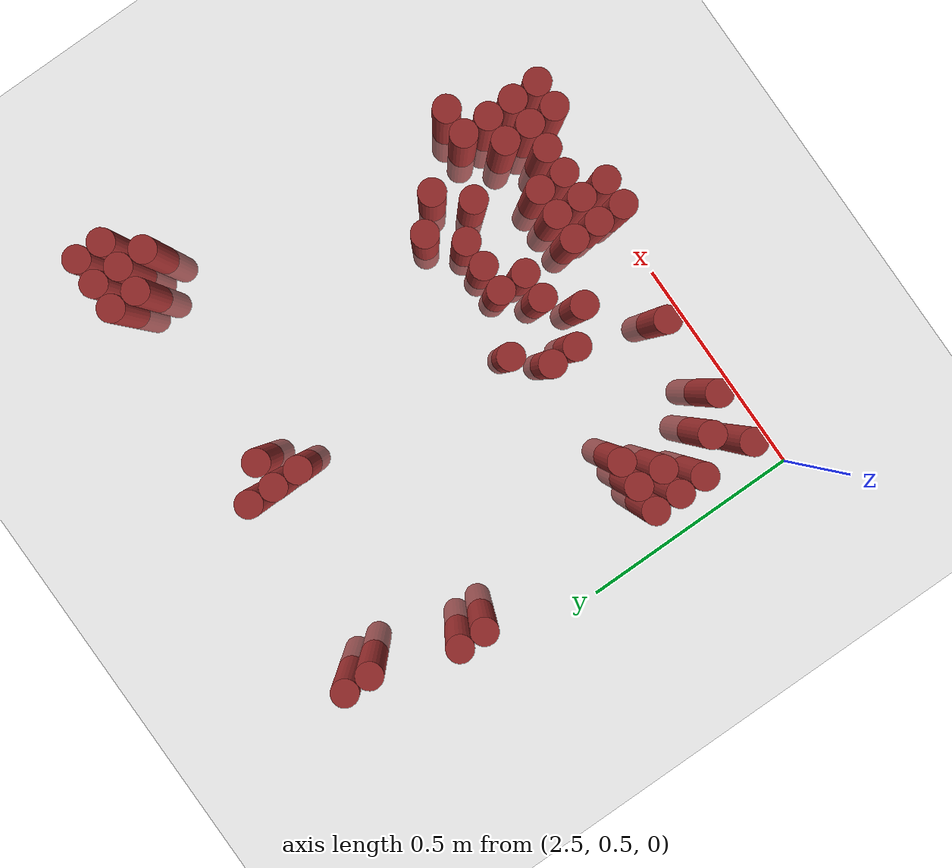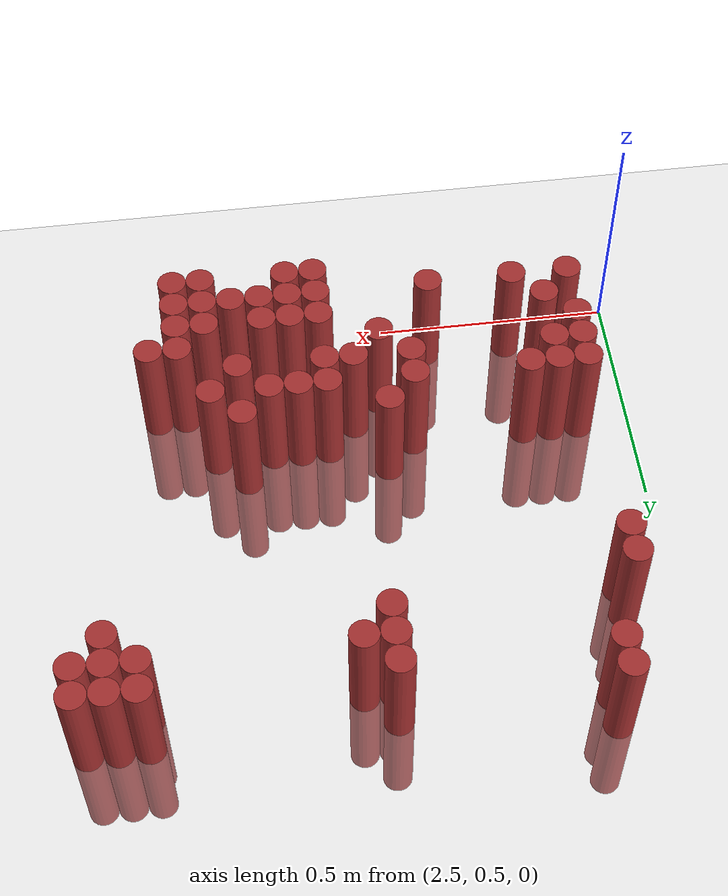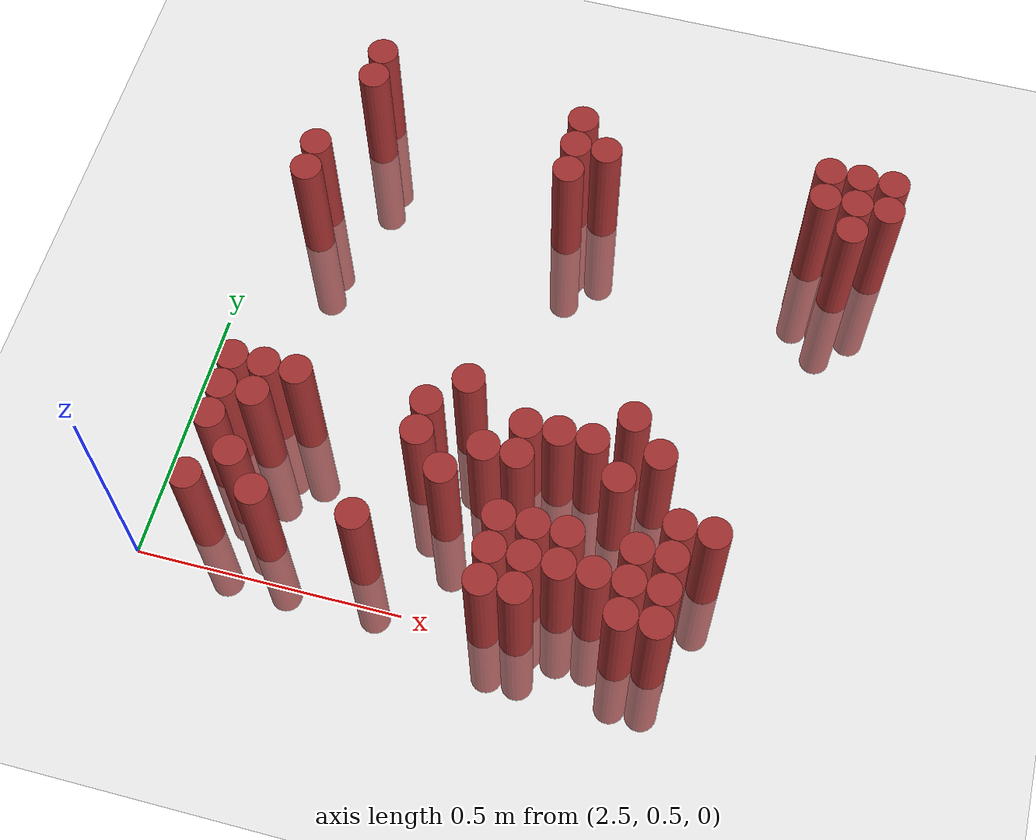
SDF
<sdf version="1.6">
 <world name="default">
  <model name="ground_plane">
   <static>1</static>
   <link name="link">
    <collision name="collision">
     <geometry><plane><normal>0 0 1</normal><size>100 100</size></plane></geometry>
     <surface><friction><ode><mu>100</mu><mu2>50</mu2></ode></friction></surface>
    </collision>
    <visual name="visual">
     <cast_shadows>0</cast_shadows>
     <geometry><plane><normal>0 0 1</normal><size>100 100</size></plane></geometry>
     <material>
      <script><uri>file://media/materials/scripts/gazebo.material</uri><name>Gazebo/Grey</name></script>
     </material>
    </visual>
   </link>
  </model>
  <model name="unit_cylinder_160">
   <static>1</static>
   <pose>2.670000 1.530000 0.000000 0.000000 0.000000 0.000000</pose>
   <link name="link">
    <inertial>
     <mass>1</mass>
     <inertia><ixx>0.145833</ixx><ixy>0</ixy><ixz>0</ixz><iyy>0.145833</iyy><iyz>0</iyz><izz>0.125</izz></inertia>
    </inertial>
    <collision name="collision">
     <geometry><cylinder><radius>0.030000</radius><length>0.5</length></cylinder></geometry>
    </collision>
    <visual name="visual">
     <geometry><cylinder><radius>0.030000</radius><length>0.5</length></cylinder></geometry>
     <material>
      <ambient>0.648000 0.192000 0.192000 1</ambient>
      <diffuse>0.648000 0.192000 0.192000 1</diffuse>
     </material>
     <material>
      <script><name>Gazebo/Grey</name><uri>file://media/materials/scripts/gazebo.material</uri></script>
     </material>
    </visual>
   </link>
  </model>
  <model name="unit_cylinder_169">
   <static>1</static>
   <pose>2.670000 1.470000 0.000000 0.000000 0.000000 0.000000</pose>
   <link name="link">
    <inertial>
     <mass>1</mass>
     <inertia><ixx>0.145833</ixx><ixy>0</ixy><ixz>0</ixz><iyy>0.145833</iyy><iyz>0</iyz><izz>0.125</izz></inertia>
    </inertial>
    <collision name="collision">
     <geometry><cylinder><radius>0.030000</radius><length>0.5</length></cylinder></geometry>
    </collision>
    <visual name="visual">
     <geometry><cylinder><radius>0.030000</radius><length>0.5</length></cylinder></geometry>
     <material>
      <ambient>0.648000 0.192000 0.192000 1</ambient>
      <diffuse>0.648000 0.192000 0.192000 1</diffuse>
     </material>
     <material>
      <script><name>Gazebo/Grey</name><uri>file://media/materials/scripts/gazebo.material</uri></script>
     </material>
    </visual>
   </link>
  </model>
  <model name="unit_cylinder_170">
   <static>1</static>
   <pose>3.090000 1.470000 0.000000 0.000000 0.000000 0.000000</pose>
   <link name="link">
    <inertial>
     <mass>1</mass>
     <inertia><ixx>0.145833</ixx><ixy>0</ixy><ixz>0</ixz><iyy>0.145833</iyy><iyz>0</iyz><izz>0.125</izz></inertia>
    </inertial>
    <collision name="collision">
     <geometry><cylinder><radius>0.030000</radius><length>0.5</length></cylinder></geometry>
    </collision>
    <visual name="visual">
     <geometry><cylinder><radius>0.030000</radius><length>0.5</length></cylinder></geometry>
     <material>
      <ambient>0.648000 0.192000 0.192000 1</ambient>
      <diffuse>0.648000 0.192000 0.192000 1</diffuse>
     </material>
     <material>
      <script><name>Gazebo/Grey</name><uri>file://media/materials/scripts/gazebo.material</uri></script>
     </material>
    </visual>
   </link>
  </model>
  <model name="unit_cylinder_171">
   <static>1</static>
   <pose>3.570000 1.470000 0.000000 0.000000 0.000000 0.000000</pose>
   <link name="link">
    <inertial>
     <mass>1</mass>
     <inertia><ixx>0.145833</ixx><ixy>0</ixy><ixz>0</ixz><iyy>0.145833</iyy><iyz>0</iyz><izz>0.125</izz></inertia>
    </inertial>
    <collision name="collision">
     <geometry><cylinder><radius>0.030000</radius><length>0.5</length></cylinder></geometry>
    </collision>
    <visual name="visual">
     <geometry><cylinder><radius>0.030000</radius><length>0.5</length></cylinder></geometry>
     <material>
      <ambient>0.648000 0.192000 0.192000 1</ambient>
      <diffuse>0.648000 0.192000 0.192000 1</diffuse>
     </material>
     <material>
      <script><name>Gazebo/Grey</name><uri>file://media/materials/scripts/gazebo.material</uri></script>
     </material>
    </visual>
   </link>
  </model>
  <model name="unit_cylinder_172">
   <static>1</static>
   <pose>3.630000 1.470000 0.000000 0.000000 0.000000 0.000000</pose>
   <link name="link">
    <inertial>
     <mass>1</mass>
     <inertia><ixx>0.145833</ixx><ixy>0</ixy><ixz>0</ixz><iyy>0.145833</iyy><iyz>0</iyz><izz>0.125</izz></inertia>
    </inertial>
    <collision name="collision">
     <geometry><cylinder><radius>0.030000</radius><length>0.5</length></cylinder></geometry>
    </collision>
    <visual name="visual">
     <geometry><cylinder><radius>0.030000</radius><length>0.5</length></cylinder></geometry>
     <material>
      <ambient>0.648000 0.192000 0.192000 1</ambient>
      <diffuse>0.648000 0.192000 0.192000 1</diffuse>
     </material>
     <material>
      <script><name>Gazebo/Grey</name><uri>file://media/materials/scripts/gazebo.material</uri></script>
     </material>
    </visual>
   </link>
  </model>
  <model name="unit_cylinder_173">
   <static>1</static>
   <pose>3.690000 1.470000 0.000000 0.000000 0.000000 0.000000</pose>
   <link name="link">
    <inertial>
     <mass>1</mass>
     <inertia><ixx>0.145833</ixx><ixy>0</ixy><ixz>0</ixz><iyy>0.145833</iyy><iyz>0</iyz><izz>0.125</izz></inertia>
    </inertial>
    <collision name="collision">
     <geometry><cylinder><radius>0.030000</radius><length>0.5</length></cylinder></geometry>
    </collision>
    <visual name="visual">
     <geometry><cylinder><radius>0.030000</radius><length>0.5</length></cylinder></geometry>
     <material>
      <ambient>0.648000 0.192000 0.192000 1</ambient>
      <diffuse>0.648000 0.192000 0.192000 1</diffuse>
     </material>
     <material>
      <script><name>Gazebo/Grey</name><uri>file://media/materials/scripts/gazebo.material</uri></script>
     </material>
    </visual>
   </link>
  </model>
  <model name="unit_cylinder_176">
   <static>1</static>
   <pose>3.090000 1.410000 0.000000 0.000000 0.000000 0.000000</pose>
   <link name="link">
    <inertial>
     <mass>1</mass>
     <inertia><ixx>0.145833</ixx><ixy>0</ixy><ixz>0</ixz><iyy>0.145833</iyy><iyz>0</iyz><izz>0.125</izz></inertia>
    </inertial>
    <collision name="collision">
     <geometry><cylinder><radius>0.030000</radius><length>0.5</length></cylinder></geometry>
    </collision>
    <visual name="visual">
     <geometry><cylinder><radius>0.030000</radius><length>0.5</length></cylinder></geometry>
     <material>
      <ambient>0.648000 0.192000 0.192000 1</ambient>
      <diffuse>0.648000 0.192000 0.192000 1</diffuse>
     </material>
     <material>
      <script><name>Gazebo/Grey</name><uri>file://media/materials/scripts/gazebo.material</uri></script>
     </material>
    </visual>
   </link>
  </model>
  <model name="unit_cylinder_177">
   <static>1</static>
   <pose>3.150000 1.410000 0.000000 0.000000 0.000000 0.000000</pose>
   <link name="link">
    <inertial>
     <mass>1</mass>
     <inertia><ixx>0.145833</ixx><ixy>0</ixy><ixz>0</ixz><iyy>0.145833</iyy><iyz>0</iyz><izz>0.125</izz></inertia>
    </inertial>
    <collision name="collision">
     <geometry><cylinder><radius>0.030000</radius><length>0.5</length></cylinder></geometry>
    </collision>
    <visual name="visual">
     <geometry><cylinder><radius>0.030000</radius><length>0.5</length></cylinder></geometry>
     <material>
      <ambient>0.648000 0.192000 0.192000 1</ambient>
      <diffuse>0.648000 0.192000 0.192000 1</diffuse>
     </material>
     <material>
      <script><name>Gazebo/Grey</name><uri>file://media/materials/scripts/gazebo.material</uri></script>
     </material>
    </visual>
   </link>
  </model>
  <model name="unit_cylinder_178">
   <static>1</static>
   <pose>3.570000 1.410000 0.000000 0.000000 0.000000 0.000000</pose>
   <link name="link">
    <inertial>
     <mass>1</mass>
     <inertia><ixx>0.145833</ixx><ixy>0</ixy><ixz>0</ixz><iyy>0.145833</iyy><iyz>0</iyz><izz>0.125</izz></inertia>
    </inertial>
    <collision name="collision">
     <geometry><cylinder><radius>0.030000</radius><length>0.5</length></cylinder></geometry>
    </collision>
    <visual name="visual">
     <geometry><cylinder><radius>0.030000</radius><length>0.5</length></cylinder></geometry>
     <material>
      <ambient>0.648000 0.192000 0.192000 1</ambient>
      <diffuse>0.648000 0.192000 0.192000 1</diffuse>
     </material>
     <material>
      <script><name>Gazebo/Grey</name><uri>file://media/materials/scripts/gazebo.material</uri></script>
     </material>
    </visual>
   </link>
  </model>
  <model name="unit_cylinder_179">
   <static>1</static>
   <pose>3.630000 1.410000 0.000000 0.000000 0.000000 0.000000</pose>
   <link name="link">
    <inertial>
     <mass>1</mass>
     <inertia><ixx>0.145833</ixx><ixy>0</ixy><ixz>0</ixz><iyy>0.145833</iyy><iyz>0</iyz><izz>0.125</izz></inertia>
    </inertial>
    <collision name="collision">
     <geometry><cylinder><radius>0.030000</radius><length>0.5</length></cylinder></geometry>
    </collision>
    <visual name="visual">
     <geometry><cylinder><radius>0.030000</radius><length>0.5</length></cylinder></geometry>
     <material>
      <ambient>0.648000 0.192000 0.192000 1</ambient>
      <diffuse>0.648000 0.192000 0.192000 1</diffuse>
     </material>
     <material>
      <script><name>Gazebo/Grey</name><uri>file://media/materials/scripts/gazebo.material</uri></script>
     </material>
    </visual>
   </link>
  </model>
  <model name="unit_cylinder_180">
   <static>1</static>
   <pose>3.690000 1.410000 0.000000 0.000000 0.000000 0.000000</pose>
   <link name="link">
    <inertial>
     <mass>1</mass>
     <inertia><ixx>0.145833</ixx><ixy>0</ixy><ixz>0</ixz><iyy>0.145833</iyy><iyz>0</iyz><izz>0.125</izz></inertia>
    </inertial>
    <collision name="collision">
     <geometry><cylinder><radius>0.030000</radius><length>0.5</length></cylinder></geometry>
    </collision>
    <visual name="visual">
     <geometry><cylinder><radius>0.030000</radius><length>0.5</length></cylinder></geometry>
     <material>
      <ambient>0.648000 0.192000 0.192000 1</ambient>
      <diffuse>0.648000 0.192000 0.192000 1</diffuse>
     </material>
     <material>
      <script><name>Gazebo/Grey</name><uri>file://media/materials/scripts/gazebo.material</uri></script>
     </material>
    </visual>
   </link>
  </model>
  <model name="unit_cylinder_182">
   <static>1</static>
   <pose>3.090000 1.350000 0.000000 0.000000 0.000000 0.000000</pose>
   <link name="link">
    <inertial>
     <mass>1</mass>
     <inertia><ixx>0.145833</ixx><ixy>0</ixy><ixz>0</ixz><iyy>0.145833</iyy><iyz>0</iyz><izz>0.125</izz></inertia>
    </inertial>
    <collision name="collision">
     <geometry><cylinder><radius>0.030000</radius><length>0.5</length></cylinder></geometry>
    </collision>
    <visual name="visual">
     <geometry><cylinder><radius>0.030000</radius><length>0.5</length></cylinder></geometry>
     <material>
      <ambient>0.648000 0.192000 0.192000 1</ambient>
      <diffuse>0.648000 0.192000 0.192000 1</diffuse>
     </material>
     <material>
      <script><name>Gazebo/Grey</name><uri>file://media/materials/scripts/gazebo.material</uri></script>
     </material>
    </visual>
   </link>
  </model>
  <model name="unit_cylinder_183">
   <static>1</static>
   <pose>3.630000 1.350000 0.000000 0.000000 0.000000 0.000000</pose>
   <link name="link">
    <inertial>
     <mass>1</mass>
     <inertia><ixx>0.145833</ixx><ixy>0</ixy><ixz>0</ixz><iyy>0.145833</iyy><iyz>0</iyz><izz>0.125</izz></inertia>
    </inertial>
    <collision name="collision">
     <geometry><cylinder><radius>0.030000</radius><length>0.5</length></cylinder></geometry>
    </collision>
    <visual name="visual">
     <geometry><cylinder><radius>0.030000</radius><length>0.5</length></cylinder></geometry>
     <material>
      <ambient>0.648000 0.192000 0.192000 1</ambient>
      <diffuse>0.648000 0.192000 0.192000 1</diffuse>
     </material>
     <material>
      <script><name>Gazebo/Grey</name><uri>file://media/materials/scripts/gazebo.material</uri></script>
     </material>
    </visual>
   </link>
  </model>
  <model name="unit_cylinder_184">
   <static>1</static>
   <pose>2.610000 1.290000 0.000000 0.000000 0.000000 0.000000</pose>
   <link name="link">
    <inertial>
     <mass>1</mass>
     <inertia><ixx>0.145833</ixx><ixy>0</ixy><ixz>0</ixz><iyy>0.145833</iyy><iyz>0</iyz><izz>0.125</izz></inertia>
    </inertial>
    <collision name="collision">
     <geometry><cylinder><radius>0.030000</radius><length>0.5</length></cylinder></geometry>
    </collision>
    <visual name="visual">
     <geometry><cylinder><radius>0.030000</radius><length>0.5</length></cylinder></geometry>
     <material>
      <ambient>0.648000 0.192000 0.192000 1</ambient>
      <diffuse>0.648000 0.192000 0.192000 1</diffuse>
     </material>
     <material>
      <script><name>Gazebo/Grey</name><uri>file://media/materials/scripts/gazebo.material</uri></script>
     </material>
    </visual>
   </link>
  </model>
  <model name="unit_cylinder_186">
   <static>1</static>
   <pose>2.610000 1.230000 0.000000 0.000000 0.000000 0.000000</pose>
   <link name="link">
    <inertial>
     <mass>1</mass>
     <inertia><ixx>0.145833</ixx><ixy>0</ixy><ixz>0</ixz><iyy>0.145833</iyy><iyz>0</iyz><izz>0.125</izz></inertia>
    </inertial>
    <collision name="collision">
     <geometry><cylinder><radius>0.030000</radius><length>0.5</length></cylinder></geometry>
    </collision>
    <visual name="visual">
     <geometry><cylinder><radius>0.030000</radius><length>0.5</length></cylinder></geometry>
     <material>
      <ambient>0.648000 0.192000 0.192000 1</ambient>
      <diffuse>0.648000 0.192000 0.192000 1</diffuse>
     </material>
     <material>
      <script><name>Gazebo/Grey</name><uri>file://media/materials/scripts/gazebo.material</uri></script>
     </material>
    </visual>
   </link>
  </model>
  <model name="unit_cylinder_189">
   <static>1</static>
   <pose>3.030000 0.870000 0.000000 0.000000 0.000000 0.000000</pose>
   <link name="link">
    <inertial>
     <mass>1</mass>
     <inertia><ixx>0.145833</ixx><ixy>0</ixy><ixz>0</ixz><iyy>0.145833</iyy><iyz>0</iyz><izz>0.125</izz></inertia>
    </inertial>
    <collision name="collision">
     <geometry><cylinder><radius>0.030000</radius><length>0.5</length></cylinder></geometry>
    </collision>
    <visual name="visual">
     <geometry><cylinder><radius>0.030000</radius><length>0.5</length></cylinder></geometry>
     <material>
      <ambient>0.648000 0.192000 0.192000 1</ambient>
      <diffuse>0.648000 0.192000 0.192000 1</diffuse>
     </material>
     <material>
      <script><name>Gazebo/Grey</name><uri>file://media/materials/scripts/gazebo.material</uri></script>
     </material>
    </visual>
   </link>
  </model>
  <model name="unit_cylinder_190">
   <static>1</static>
   <pose>3.330000 0.870000 0.000000 0.000000 0.000000 0.000000</pose>
   <link name="link">
    <inertial>
     <mass>1</mass>
     <inertia><ixx>0.145833</ixx><ixy>0</ixy><ixz>0</ixz><iyy>0.145833</iyy><iyz>0</iyz><izz>0.125</izz></inertia>
    </inertial>
    <collision name="collision">
     <geometry><cylinder><radius>0.030000</radius><length>0.5</length></cylinder></geometry>
    </collision>
    <visual name="visual">
     <geometry><cylinder><radius>0.030000</radius><length>0.5</length></cylinder></geometry>
     <material>
      <ambient>0.648000 0.192000 0.192000 1</ambient>
      <diffuse>0.648000 0.192000 0.192000 1</diffuse>
     </material>
     <material>
      <script><name>Gazebo/Grey</name><uri>file://media/materials/scripts/gazebo.material</uri></script>
     </material>
    </visual>
   </link>
  </model>
  <model name="unit_cylinder_193">
   <static>1</static>
   <pose>2.610000 0.810000 0.000000 0.000000 0.000000 0.000000</pose>
   <link name="link">
    <inertial>
     <mass>1</mass>
     <inertia><ixx>0.145833</ixx><ixy>0</ixy><ixz>0</ixz><iyy>0.145833</iyy><iyz>0</iyz><izz>0.125</izz></inertia>
    </inertial>
    <collision name="collision">
     <geometry><cylinder><radius>0.030000</radius><length>0.5</length></cylinder></geometry>
    </collision>
    <visual name="visual">
     <geometry><cylinder><radius>0.030000</radius><length>0.5</length></cylinder></geometry>
     <material>
      <ambient>0.648000 0.192000 0.192000 1</ambient>
      <diffuse>0.648000 0.192000 0.192000 1</diffuse>
     </material>
     <material>
      <script><name>Gazebo/Grey</name><uri>file://media/materials/scripts/gazebo.material</uri></script>
     </material>
    </visual>
   </link>
  </model>
  <model name="unit_cylinder_194">
   <static>1</static>
   <pose>2.670000 0.810000 0.000000 0.000000 0.000000 0.000000</pose>
   <link name="link">
    <inertial>
     <mass>1</mass>
     <inertia><ixx>0.145833</ixx><ixy>0</ixy><ixz>0</ixz><iyy>0.145833</iyy><iyz>0</iyz><izz>0.125</izz></inertia>
    </inertial>
    <collision name="collision">
     <geometry><cylinder><radius>0.030000</radius><length>0.5</length></cylinder></geometry>
    </collision>
    <visual name="visual">
     <geometry><cylinder><radius>0.030000</radius><length>0.5</length></cylinder></geometry>
     <material>
      <ambient>0.648000 0.192000 0.192000 1</ambient>
      <diffuse>0.648000 0.192000 0.192000 1</diffuse>
     </material>
     <material>
      <script><name>Gazebo/Grey</name><uri>file://media/materials/scripts/gazebo.material</uri></script>
     </material>
    </visual>
   </link>
  </model>
  <model name="unit_cylinder_195">
   <static>1</static>
   <pose>2.730000 0.810000 0.000000 0.000000 0.000000 0.000000</pose>
   <link name="link">
    <inertial>
     <mass>1</mass>
     <inertia><ixx>0.145833</ixx><ixy>0</ixy><ixz>0</ixz><iyy>0.145833</iyy><iyz>0</iyz><izz>0.125</izz></inertia>
    </inertial>
    <collision name="collision">
     <geometry><cylinder><radius>0.030000</radius><length>0.5</length></cylinder></geometry>
    </collision>
    <visual name="visual">
     <geometry><cylinder><radius>0.030000</radius><length>0.5</length></cylinder></geometry>
     <material>
      <ambient>0.648000 0.192000 0.192000 1</ambient>
      <diffuse>0.648000 0.192000 0.192000 1</diffuse>
     </material>
     <material>
      <script><name>Gazebo/Grey</name><uri>file://media/materials/scripts/gazebo.material</uri></script>
     </material>
    </visual>
   </link>
  </model>
  <model name="unit_cylinder_196">
   <static>1</static>
   <pose>2.970000 0.810000 0.000000 0.000000 0.000000 0.000000</pose>
   <link name="link">
    <inertial>
     <mass>1</mass>
     <inertia><ixx>0.145833</ixx><ixy>0</ixy><ixz>0</ixz><iyy>0.145833</iyy><iyz>0</iyz><izz>0.125</izz></inertia>
    </inertial>
    <collision name="collision">
     <geometry><cylinder><radius>0.030000</radius><length>0.5</length></cylinder></geometry>
    </collision>
    <visual name="visual">
     <geometry><cylinder><radius>0.030000</radius><length>0.5</length></cylinder></geometry>
     <material>
      <ambient>0.648000 0.192000 0.192000 1</ambient>
      <diffuse>0.648000 0.192000 0.192000 1</diffuse>
     </material>
     <material>
      <script><name>Gazebo/Grey</name><uri>file://media/materials/scripts/gazebo.material</uri></script>
     </material>
    </visual>
   </link>
  </model>
  <model name="unit_cylinder_197">
   <static>1</static>
   <pose>3.150000 0.810000 0.000000 0.000000 0.000000 0.000000</pose>
   <link name="link">
    <inertial>
     <mass>1</mass>
     <inertia><ixx>0.145833</ixx><ixy>0</ixy><ixz>0</ixz><iyy>0.145833</iyy><iyz>0</iyz><izz>0.125</izz></inertia>
    </inertial>
    <collision name="collision">
     <geometry><cylinder><radius>0.030000</radius><length>0.5</length></cylinder></geometry>
    </collision>
    <visual name="visual">
     <geometry><cylinder><radius>0.030000</radius><length>0.5</length></cylinder></geometry>
     <material>
      <ambient>0.648000 0.192000 0.192000 1</ambient>
      <diffuse>0.648000 0.192000 0.192000 1</diffuse>
     </material>
     <material>
      <script><name>Gazebo/Grey</name><uri>file://media/materials/scripts/gazebo.material</uri></script>
     </material>
    </visual>
   </link>
  </model>
  <model name="unit_cylinder_198">
   <static>1</static>
   <pose>3.210000 0.810000 0.000000 0.000000 0.000000 0.000000</pose>
   <link name="link">
    <inertial>
     <mass>1</mass>
     <inertia><ixx>0.145833</ixx><ixy>0</ixy><ixz>0</ixz><iyy>0.145833</iyy><iyz>0</iyz><izz>0.125</izz></inertia>
    </inertial>
    <collision name="collision">
     <geometry><cylinder><radius>0.030000</radius><length>0.5</length></cylinder></geometry>
    </collision>
    <visual name="visual">
     <geometry><cylinder><radius>0.030000</radius><length>0.5</length></cylinder></geometry>
     <material>
      <ambient>0.648000 0.192000 0.192000 1</ambient>
      <diffuse>0.648000 0.192000 0.192000 1</diffuse>
     </material>
     <material>
      <script><name>Gazebo/Grey</name><uri>file://media/materials/scripts/gazebo.material</uri></script>
     </material>
    </visual>
   </link>
  </model>
  <model name="unit_cylinder_199">
   <static>1</static>
   <pose>3.270000 0.810000 0.000000 0.000000 0.000000 0.000000</pose>
   <link name="link">
    <inertial>
     <mass>1</mass>
     <inertia><ixx>0.145833</ixx><ixy>0</ixy><ixz>0</ixz><iyy>0.145833</iyy><iyz>0</iyz><izz>0.125</izz></inertia>
    </inertial>
    <collision name="collision">
     <geometry><cylinder><radius>0.030000</radius><length>0.5</length></cylinder></geometry>
    </collision>
    <visual name="visual">
     <geometry><cylinder><radius>0.030000</radius><length>0.5</length></cylinder></geometry>
     <material>
      <ambient>0.648000 0.192000 0.192000 1</ambient>
      <diffuse>0.648000 0.192000 0.192000 1</diffuse>
     </material>
     <material>
      <script><name>Gazebo/Grey</name><uri>file://media/materials/scripts/gazebo.material</uri></script>
     </material>
    </visual>
   </link>
  </model>
  <model name="unit_cylinder_200">
   <static>1</static>
   <pose>3.390000 0.810000 0.000000 0.000000 0.000000 0.000000</pose>
   <link name="link">
    <inertial>
     <mass>1</mass>
     <inertia><ixx>0.145833</ixx><ixy>0</ixy><ixz>0</ixz><iyy>0.145833</iyy><iyz>0</iyz><izz>0.125</izz></inertia>
    </inertial>
    <collision name="collision">
     <geometry><cylinder><radius>0.030000</radius><length>0.5</length></cylinder></geometry>
    </collision>
    <visual name="visual">
     <geometry><cylinder><radius>0.030000</radius><length>0.5</length></cylinder></geometry>
     <material>
      <ambient>0.648000 0.192000 0.192000 1</ambient>
      <diffuse>0.648000 0.192000 0.192000 1</diffuse>
     </material>
     <material>
      <script><name>Gazebo/Grey</name><uri>file://media/materials/scripts/gazebo.material</uri></script>
     </material>
    </visual>
   </link>
  </model>
  <model name="unit_cylinder_204">
   <static>1</static>
   <pose>2.610000 0.750000 0.000000 0.000000 0.000000 0.000000</pose>
   <link name="link">
    <inertial>
     <mass>1</mass>
     <inertia><ixx>0.145833</ixx><ixy>0</ixy><ixz>0</ixz><iyy>0.145833</iyy><iyz>0</iyz><izz>0.125</izz></inertia>
    </inertial>
    <collision name="collision">
     <geometry><cylinder><radius>0.030000</radius><length>0.5</length></cylinder></geometry>
    </collision>
    <visual name="visual">
     <geometry><cylinder><radius>0.030000</radius><length>0.5</length></cylinder></geometry>
     <material>
      <ambient>0.648000 0.192000 0.192000 1</ambient>
      <diffuse>0.648000 0.192000 0.192000 1</diffuse>
     </material>
     <material>
      <script><name>Gazebo/Grey</name><uri>file://media/materials/scripts/gazebo.material</uri></script>
     </material>
    </visual>
   </link>
  </model>
  <model name="unit_cylinder_205">
   <static>1</static>
   <pose>2.670000 0.750000 0.000000 0.000000 0.000000 0.000000</pose>
   <link name="link">
    <inertial>
     <mass>1</mass>
     <inertia><ixx>0.145833</ixx><ixy>0</ixy><ixz>0</ixz><iyy>0.145833</iyy><iyz>0</iyz><izz>0.125</izz></inertia>
    </inertial>
    <collision name="collision">
     <geometry><cylinder><radius>0.030000</radius><length>0.5</length></cylinder></geometry>
    </collision>
    <visual name="visual">
     <geometry><cylinder><radius>0.030000</radius><length>0.5</length></cylinder></geometry>
     <material>
      <ambient>0.648000 0.192000 0.192000 1</ambient>
      <diffuse>0.648000 0.192000 0.192000 1</diffuse>
     </material>
     <material>
      <script><name>Gazebo/Grey</name><uri>file://media/materials/scripts/gazebo.material</uri></script>
     </material>
    </visual>
   </link>
  </model>
  <model name="unit_cylinder_206">
   <static>1</static>
   <pose>2.970000 0.750000 0.000000 0.000000 0.000000 0.000000</pose>
   <link name="link">
    <inertial>
     <mass>1</mass>
     <inertia><ixx>0.145833</ixx><ixy>0</ixy><ixz>0</ixz><iyy>0.145833</iyy><iyz>0</iyz><izz>0.125</izz></inertia>
    </inertial>
    <collision name="collision">
     <geometry><cylinder><radius>0.030000</radius><length>0.5</length></cylinder></geometry>
    </collision>
    <visual name="visual">
     <geometry><cylinder><radius>0.030000</radius><length>0.5</length></cylinder></geometry>
     <material>
      <ambient>0.648000 0.192000 0.192000 1</ambient>
      <diffuse>0.648000 0.192000 0.192000 1</diffuse>
     </material>
     <material>
      <script><name>Gazebo/Grey</name><uri>file://media/materials/scripts/gazebo.material</uri></script>
     </material>
    </visual>
   </link>
  </model>
  <model name="unit_cylinder_207">
   <static>1</static>
   <pose>3.090000 0.750000 0.000000 0.000000 0.000000 0.000000</pose>
   <link name="link">
    <inertial>
     <mass>1</mass>
     <inertia><ixx>0.145833</ixx><ixy>0</ixy><ixz>0</ixz><iyy>0.145833</iyy><iyz>0</iyz><izz>0.125</izz></inertia>
    </inertial>
    <collision name="collision">
     <geometry><cylinder><radius>0.030000</radius><length>0.5</length></cylinder></geometry>
    </collision>
    <visual name="visual">
     <geometry><cylinder><radius>0.030000</radius><length>0.5</length></cylinder></geometry>
     <material>
      <ambient>0.648000 0.192000 0.192000 1</ambient>
      <diffuse>0.648000 0.192000 0.192000 1</diffuse>
     </material>
     <material>
      <script><name>Gazebo/Grey</name><uri>file://media/materials/scripts/gazebo.material</uri></script>
     </material>
    </visual>
   </link>
  </model>
  <model name="unit_cylinder_208">
   <static>1</static>
   <pose>3.150000 0.750000 0.000000 0.000000 0.000000 0.000000</pose>
   <link name="link">
    <inertial>
     <mass>1</mass>
     <inertia><ixx>0.145833</ixx><ixy>0</ixy><ixz>0</ixz><iyy>0.145833</iyy><iyz>0</iyz><izz>0.125</izz></inertia>
    </inertial>
    <collision name="collision">
     <geometry><cylinder><radius>0.030000</radius><length>0.5</length></cylinder></geometry>
    </collision>
    <visual name="visual">
     <geometry><cylinder><radius>0.030000</radius><length>0.5</length></cylinder></geometry>
     <material>
      <ambient>0.648000 0.192000 0.192000 1</ambient>
      <diffuse>0.648000 0.192000 0.192000 1</diffuse>
     </material>
     <material>
      <script><name>Gazebo/Grey</name><uri>file://media/materials/scripts/gazebo.material</uri></script>
     </material>
    </visual>
   </link>
  </model>
  <model name="unit_cylinder_209">
   <static>1</static>
   <pose>3.330000 0.750000 0.000000 0.000000 0.000000 0.000000</pose>
   <link name="link">
    <inertial>
     <mass>1</mass>
     <inertia><ixx>0.145833</ixx><ixy>0</ixy><ixz>0</ixz><iyy>0.145833</iyy><iyz>0</iyz><izz>0.125</izz></inertia>
    </inertial>
    <collision name="collision">
     <geometry><cylinder><radius>0.030000</radius><length>0.5</length></cylinder></geometry>
    </collision>
    <visual name="visual">
     <geometry><cylinder><radius>0.030000</radius><length>0.5</length></cylinder></geometry>
     <material>
      <ambient>0.648000 0.192000 0.192000 1</ambient>
      <diffuse>0.648000 0.192000 0.192000 1</diffuse>
     </material>
     <material>
      <script><name>Gazebo/Grey</name><uri>file://media/materials/scripts/gazebo.material</uri></script>
     </material>
    </visual>
   </link>
  </model>
  <model name="unit_cylinder_212">
   <static>1</static>
   <pose>2.610000 0.690000 0.000000 0.000000 0.000000 0.000000</pose>
   <link name="link">
    <inertial>
     <mass>1</mass>
     <inertia><ixx>0.145833</ixx><ixy>0</ixy><ixz>0</ixz><iyy>0.145833</iyy><iyz>0</iyz><izz>0.125</izz></inertia>
    </inertial>
    <collision name="collision">
     <geometry><cylinder><radius>0.030000</radius><length>0.5</length></cylinder></geometry>
    </collision>
    <visual name="visual">
     <geometry><cylinder><radius>0.030000</radius><length>0.5</length></cylinder></geometry>
     <material>
      <ambient>0.648000 0.192000 0.192000 1</ambient>
      <diffuse>0.648000 0.192000 0.192000 1</diffuse>
     </material>
     <material>
      <script><name>Gazebo/Grey</name><uri>file://media/materials/scripts/gazebo.material</uri></script>
     </material>
    </visual>
   </link>
  </model>
  <model name="unit_cylinder_213">
   <static>1</static>
   <pose>3.030000 0.690000 0.000000 0.000000 0.000000 0.000000</pose>
   <link name="link">
    <inertial>
     <mass>1</mass>
     <inertia><ixx>0.145833</ixx><ixy>0</ixy><ixz>0</ixz><iyy>0.145833</iyy><iyz>0</iyz><izz>0.125</izz></inertia>
    </inertial>
    <collision name="collision">
     <geometry><cylinder><radius>0.030000</radius><length>0.5</length></cylinder></geometry>
    </collision>
    <visual name="visual">
     <geometry><cylinder><radius>0.030000</radius><length>0.5</length></cylinder></geometry>
     <material>
      <ambient>0.648000 0.192000 0.192000 1</ambient>
      <diffuse>0.648000 0.192000 0.192000 1</diffuse>
     </material>
     <material>
      <script><name>Gazebo/Grey</name><uri>file://media/materials/scripts/gazebo.material</uri></script>
     </material>
    </visual>
   </link>
  </model>
  <model name="unit_cylinder_214">
   <static>1</static>
   <pose>3.450000 0.690000 0.000000 0.000000 0.000000 0.000000</pose>
   <link name="link">
    <inertial>
     <mass>1</mass>
     <inertia><ixx>0.145833</ixx><ixy>0</ixy><ixz>0</ixz><iyy>0.145833</iyy><iyz>0</iyz><izz>0.125</izz></inertia>
    </inertial>
    <collision name="collision">
     <geometry><cylinder><radius>0.030000</radius><length>0.5</length></cylinder></geometry>
    </collision>
    <visual name="visual">
     <geometry><cylinder><radius>0.030000</radius><length>0.5</length></cylinder></geometry>
     <material>
      <ambient>0.648000 0.192000 0.192000 1</ambient>
      <diffuse>0.648000 0.192000 0.192000 1</diffuse>
     </material>
     <material>
      <script><name>Gazebo/Grey</name><uri>file://media/materials/scripts/gazebo.material</uri></script>
     </material>
    </visual>
   </link>
  </model>
  <model name="unit_cylinder_215">
   <static>1</static>
   <pose>3.510000 0.690000 0.000000 0.000000 0.000000 0.000000</pose>
   <link name="link">
    <inertial>
     <mass>1</mass>
     <inertia><ixx>0.145833</ixx><ixy>0</ixy><ixz>0</ixz><iyy>0.145833</iyy><iyz>0</iyz><izz>0.125</izz></inertia>
    </inertial>
    <collision name="collision">
     <geometry><cylinder><radius>0.030000</radius><length>0.5</length></cylinder></geometry>
    </collision>
    <visual name="visual">
     <geometry><cylinder><radius>0.030000</radius><length>0.5</length></cylinder></geometry>
     <material>
      <ambient>0.648000 0.192000 0.192000 1</ambient>
      <diffuse>0.648000 0.192000 0.192000 1</diffuse>
     </material>
     <material>
      <script><name>Gazebo/Grey</name><uri>file://media/materials/scripts/gazebo.material</uri></script>
     </material>
    </visual>
   </link>
  </model>
  <model name="unit_cylinder_218">
   <static>1</static>
   <pose>2.670000 0.630000 0.000000 0.000000 0.000000 0.000000</pose>
   <link name="link">
    <inertial>
     <mass>1</mass>
     <inertia><ixx>0.145833</ixx><ixy>0</ixy><ixz>0</ixz><iyy>0.145833</iyy><iyz>0</iyz><izz>0.125</izz></inertia>
    </inertial>
    <collision name="collision">
     <geometry><cylinder><radius>0.030000</radius><length>0.5</length></cylinder></geometry>
    </collision>
    <visual name="visual">
     <geometry><cylinder><radius>0.030000</radius><length>0.5</length></cylinder></geometry>
     <material>
      <ambient>0.648000 0.192000 0.192000 1</ambient>
      <diffuse>0.648000 0.192000 0.192000 1</diffuse>
     </material>
     <material>
      <script><name>Gazebo/Grey</name><uri>file://media/materials/scripts/gazebo.material</uri></script>
     </material>
    </visual>
   </link>
  </model>
  <model name="unit_cylinder_219">
   <static>1</static>
   <pose>3.150000 0.630000 0.000000 0.000000 0.000000 0.000000</pose>
   <link name="link">
    <inertial>
     <mass>1</mass>
     <inertia><ixx>0.145833</ixx><ixy>0</ixy><ixz>0</ixz><iyy>0.145833</iyy><iyz>0</iyz><izz>0.125</izz></inertia>
    </inertial>
    <collision name="collision">
     <geometry><cylinder><radius>0.030000</radius><length>0.5</length></cylinder></geometry>
    </collision>
    <visual name="visual">
     <geometry><cylinder><radius>0.030000</radius><length>0.5</length></cylinder></geometry>
     <material>
      <ambient>0.648000 0.192000 0.192000 1</ambient>
      <diffuse>0.648000 0.192000 0.192000 1</diffuse>
     </material>
     <material>
      <script><name>Gazebo/Grey</name><uri>file://media/materials/scripts/gazebo.material</uri></script>
     </material>
    </visual>
   </link>
  </model>
  <model name="unit_cylinder_220">
   <static>1</static>
   <pose>3.210000 0.630000 0.000000 0.000000 0.000000 0.000000</pose>
   <link name="link">
    <inertial>
     <mass>1</mass>
     <inertia><ixx>0.145833</ixx><ixy>0</ixy><ixz>0</ixz><iyy>0.145833</iyy><iyz>0</iyz><izz>0.125</izz></inertia>
    </inertial>
    <collision name="collision">
     <geometry><cylinder><radius>0.030000</radius><length>0.5</length></cylinder></geometry>
    </collision>
    <visual name="visual">
     <geometry><cylinder><radius>0.030000</radius><length>0.5</length></cylinder></geometry>
     <material>
      <ambient>0.648000 0.192000 0.192000 1</ambient>
      <diffuse>0.648000 0.192000 0.192000 1</diffuse>
     </material>
     <material>
      <script><name>Gazebo/Grey</name><uri>file://media/materials/scripts/gazebo.material</uri></script>
     </material>
    </visual>
   </link>
  </model>
  <model name="unit_cylinder_221">
   <static>1</static>
   <pose>3.270000 0.630000 0.000000 0.000000 0.000000 0.000000</pose>
   <link name="link">
    <inertial>
     <mass>1</mass>
     <inertia><ixx>0.145833</ixx><ixy>0</ixy><ixz>0</ixz><iyy>0.145833</iyy><iyz>0</iyz><izz>0.125</izz></inertia>
    </inertial>
    <collision name="collision">
     <geometry><cylinder><radius>0.030000</radius><length>0.5</length></cylinder></geometry>
    </collision>
    <visual name="visual">
     <geometry><cylinder><radius>0.030000</radius><length>0.5</length></cylinder></geometry>
     <material>
      <ambient>0.648000 0.192000 0.192000 1</ambient>
      <diffuse>0.648000 0.192000 0.192000 1</diffuse>
     </material>
     <material>
      <script><name>Gazebo/Grey</name><uri>file://media/materials/scripts/gazebo.material</uri></script>
     </material>
    </visual>
   </link>
  </model>
  <model name="unit_cylinder_222">
   <static>1</static>
   <pose>3.390000 0.630000 0.000000 0.000000 0.000000 0.000000</pose>
   <link name="link">
    <inertial>
     <mass>1</mass>
     <inertia><ixx>0.145833</ixx><ixy>0</ixy><ixz>0</ixz><iyy>0.145833</iyy><iyz>0</iyz><izz>0.125</izz></inertia>
    </inertial>
    <collision name="collision">
     <geometry><cylinder><radius>0.030000</radius><length>0.5</length></cylinder></geometry>
    </collision>
    <visual name="visual">
     <geometry><cylinder><radius>0.030000</radius><length>0.5</length></cylinder></geometry>
     <material>
      <ambient>0.648000 0.192000 0.192000 1</ambient>
      <diffuse>0.648000 0.192000 0.192000 1</diffuse>
     </material>
     <material>
      <script><name>Gazebo/Grey</name><uri>file://media/materials/scripts/gazebo.material</uri></script>
     </material>
    </visual>
   </link>
  </model>
  <model name="unit_cylinder_223">
   <static>1</static>
   <pose>3.450000 0.630000 0.000000 0.000000 0.000000 0.000000</pose>
   <link name="link">
    <inertial>
     <mass>1</mass>
     <inertia><ixx>0.145833</ixx><ixy>0</ixy><ixz>0</ixz><iyy>0.145833</iyy><iyz>0</iyz><izz>0.125</izz></inertia>
    </inertial>
    <collision name="collision">
     <geometry><cylinder><radius>0.030000</radius><length>0.5</length></cylinder></geometry>
    </collision>
    <visual name="visual">
     <geometry><cylinder><radius>0.030000</radius><length>0.5</length></cylinder></geometry>
     <material>
      <ambient>0.648000 0.192000 0.192000 1</ambient>
      <diffuse>0.648000 0.192000 0.192000 1</diffuse>
     </material>
     <material>
      <script><name>Gazebo/Grey</name><uri>file://media/materials/scripts/gazebo.material</uri></script>
     </material>
    </visual>
   </link>
  </model>
  <model name="unit_cylinder_228">
   <static>1</static>
   <pose>2.610000 0.570000 0.000000 0.000000 0.000000 0.000000</pose>
   <link name="link">
    <inertial>
     <mass>1</mass>
     <inertia><ixx>0.145833</ixx><ixy>0</ixy><ixz>0</ixz><iyy>0.145833</iyy><iyz>0</iyz><izz>0.125</izz></inertia>
    </inertial>
    <collision name="collision">
     <geometry><cylinder><radius>0.030000</radius><length>0.5</length></cylinder></geometry>
    </collision>
    <visual name="visual">
     <geometry><cylinder><radius>0.030000</radius><length>0.5</length></cylinder></geometry>
     <material>
      <ambient>0.648000 0.192000 0.192000 1</ambient>
      <diffuse>0.648000 0.192000 0.192000 1</diffuse>
     </material>
     <material>
      <script><name>Gazebo/Grey</name><uri>file://media/materials/scripts/gazebo.material</uri></script>
     </material>
    </visual>
   </link>
  </model>
  <model name="unit_cylinder_229">
   <static>1</static>
   <pose>2.730000 0.570000 0.000000 0.000000 0.000000 0.000000</pose>
   <link name="link">
    <inertial>
     <mass>1</mass>
     <inertia><ixx>0.145833</ixx><ixy>0</ixy><ixz>0</ixz><iyy>0.145833</iyy><iyz>0</iyz><izz>0.125</izz></inertia>
    </inertial>
    <collision name="collision">
     <geometry><cylinder><radius>0.030000</radius><length>0.5</length></cylinder></geometry>
    </collision>
    <visual name="visual">
     <geometry><cylinder><radius>0.030000</radius><length>0.5</length></cylinder></geometry>
     <material>
      <ambient>0.648000 0.192000 0.192000 1</ambient>
      <diffuse>0.648000 0.192000 0.192000 1</diffuse>
     </material>
     <material>
      <script><name>Gazebo/Grey</name><uri>file://media/materials/scripts/gazebo.material</uri></script>
     </material>
    </visual>
   </link>
  </model>
  <model name="unit_cylinder_230">
   <static>1</static>
   <pose>2.910000 0.570000 0.000000 0.000000 0.000000 0.000000</pose>
   <link name="link">
    <inertial>
     <mass>1</mass>
     <inertia><ixx>0.145833</ixx><ixy>0</ixy><ixz>0</ixz><iyy>0.145833</iyy><iyz>0</iyz><izz>0.125</izz></inertia>
    </inertial>
    <collision name="collision">
     <geometry><cylinder><radius>0.030000</radius><length>0.5</length></cylinder></geometry>
    </collision>
    <visual name="visual">
     <geometry><cylinder><radius>0.030000</radius><length>0.5</length></cylinder></geometry>
     <material>
      <ambient>0.648000 0.192000 0.192000 1</ambient>
      <diffuse>0.648000 0.192000 0.192000 1</diffuse>
     </material>
     <material>
      <script><name>Gazebo/Grey</name><uri>file://media/materials/scripts/gazebo.material</uri></script>
     </material>
    </visual>
   </link>
  </model>
  <model name="unit_cylinder_231">
   <static>1</static>
   <pose>3.150000 0.570000 0.000000 0.000000 0.000000 0.000000</pose>
   <link name="link">
    <inertial>
     <mass>1</mass>
     <inertia><ixx>0.145833</ixx><ixy>0</ixy><ixz>0</ixz><iyy>0.145833</iyy><iyz>0</iyz><izz>0.125</izz></inertia>
    </inertial>
    <collision name="collision">
     <geometry><cylinder><radius>0.030000</radius><length>0.5</length></cylinder></geometry>
    </collision>
    <visual name="visual">
     <geometry><cylinder><radius>0.030000</radius><length>0.5</length></cylinder></geometry>
     <material>
      <ambient>0.648000 0.192000 0.192000 1</ambient>
      <diffuse>0.648000 0.192000 0.192000 1</diffuse>
     </material>
     <material>
      <script><name>Gazebo/Grey</name><uri>file://media/materials/scripts/gazebo.material</uri></script>
     </material>
    </visual>
   </link>
  </model>
  <model name="unit_cylinder_232">
   <static>1</static>
   <pose>3.210000 0.570000 0.000000 0.000000 0.000000 0.000000</pose>
   <link name="link">
    <inertial>
     <mass>1</mass>
     <inertia><ixx>0.145833</ixx><ixy>0</ixy><ixz>0</ixz><iyy>0.145833</iyy><iyz>0</iyz><izz>0.125</izz></inertia>
    </inertial>
    <collision name="collision">
     <geometry><cylinder><radius>0.030000</radius><length>0.5</length></cylinder></geometry>
    </collision>
    <visual name="visual">
     <geometry><cylinder><radius>0.030000</radius><length>0.5</length></cylinder></geometry>
     <material>
      <ambient>0.648000 0.192000 0.192000 1</ambient>
      <diffuse>0.648000 0.192000 0.192000 1</diffuse>
     </material>
     <material>
      <script><name>Gazebo/Grey</name><uri>file://media/materials/scripts/gazebo.material</uri></script>
     </material>
    </visual>
   </link>
  </model>
  <model name="unit_cylinder_233">
   <static>1</static>
   <pose>3.270000 0.570000 0.000000 0.000000 0.000000 0.000000</pose>
   <link name="link">
    <inertial>
     <mass>1</mass>
     <inertia><ixx>0.145833</ixx><ixy>0</ixy><ixz>0</ixz><iyy>0.145833</iyy><iyz>0</iyz><izz>0.125</izz></inertia>
    </inertial>
    <collision name="collision">
     <geometry><cylinder><radius>0.030000</radius><length>0.5</length></cylinder></geometry>
    </collision>
    <visual name="visual">
     <geometry><cylinder><radius>0.030000</radius><length>0.5</length></cylinder></geometry>
     <material>
      <ambient>0.648000 0.192000 0.192000 1</ambient>
      <diffuse>0.648000 0.192000 0.192000 1</diffuse>
     </material>
     <material>
      <script><name>Gazebo/Grey</name><uri>file://media/materials/scripts/gazebo.material</uri></script>
     </material>
    </visual>
   </link>
  </model>
  <model name="unit_cylinder_234">
   <static>1</static>
   <pose>3.330000 0.570000 0.000000 0.000000 0.000000 0.000000</pose>
   <link name="link">
    <inertial>
     <mass>1</mass>
     <inertia><ixx>0.145833</ixx><ixy>0</ixy><ixz>0</ixz><iyy>0.145833</iyy><iyz>0</iyz><izz>0.125</izz></inertia>
    </inertial>
    <collision name="collision">
     <geometry><cylinder><radius>0.030000</radius><length>0.5</length></cylinder></geometry>
    </collision>
    <visual name="visual">
     <geometry><cylinder><radius>0.030000</radius><length>0.5</length></cylinder></geometry>
     <material>
      <ambient>0.648000 0.192000 0.192000 1</ambient>
      <diffuse>0.648000 0.192000 0.192000 1</diffuse>
     </material>
     <material>
      <script><name>Gazebo/Grey</name><uri>file://media/materials/scripts/gazebo.material</uri></script>
     </material>
    </visual>
   </link>
  </model>
  <model name="unit_cylinder_235">
   <static>1</static>
   <pose>3.390000 0.570000 0.000000 0.000000 0.000000 0.000000</pose>
   <link name="link">
    <inertial>
     <mass>1</mass>
     <inertia><ixx>0.145833</ixx><ixy>0</ixy><ixz>0</ixz><iyy>0.145833</iyy><iyz>0</iyz><izz>0.125</izz></inertia>
    </inertial>
    <collision name="collision">
     <geometry><cylinder><radius>0.030000</radius><length>0.5</length></cylinder></geometry>
    </collision>
    <visual name="visual">
     <geometry><cylinder><radius>0.030000</radius><length>0.5</length></cylinder></geometry>
     <material>
      <ambient>0.648000 0.192000 0.192000 1</ambient>
      <diffuse>0.648000 0.192000 0.192000 1</diffuse>
     </material>
     <material>
      <script><name>Gazebo/Grey</name><uri>file://media/materials/scripts/gazebo.material</uri></script>
     </material>
    </visual>
   </link>
  </model>
  <model name="unit_cylinder_236">
   <static>1</static>
   <pose>3.450000 0.570000 0.000000 0.000000 0.000000 0.000000</pose>
   <link name="link">
    <inertial>
     <mass>1</mass>
     <inertia><ixx>0.145833</ixx><ixy>0</ixy><ixz>0</ixz><iyy>0.145833</iyy><iyz>0</iyz><izz>0.125</izz></inertia>
    </inertial>
    <collision name="collision">
     <geometry><cylinder><radius>0.030000</radius><length>0.5</length></cylinder></geometry>
    </collision>
    <visual name="visual">
     <geometry><cylinder><radius>0.030000</radius><length>0.5</length></cylinder></geometry>
     <material>
      <ambient>0.648000 0.192000 0.192000 1</ambient>
      <diffuse>0.648000 0.192000 0.192000 1</diffuse>
     </material>
     <material>
      <script><name>Gazebo/Grey</name><uri>file://media/materials/scripts/gazebo.material</uri></script>
     </material>
    </visual>
   </link>
  </model>
  <model name="unit_cylinder_241">
   <static>1</static>
   <pose>3.150000 0.510000 0.000000 0.000000 0.000000 0.000000</pose>
   <link name="link">
    <inertial>
     <mass>1</mass>
     <inertia><ixx>0.145833</ixx><ixy>0</ixy><ixz>0</ixz><iyy>0.145833</iyy><iyz>0</iyz><izz>0.125</izz></inertia>
    </inertial>
    <collision name="collision">
     <geometry><cylinder><radius>0.030000</radius><length>0.5</length></cylinder></geometry>
    </collision>
    <visual name="visual">
     <geometry><cylinder><radius>0.030000</radius><length>0.5</length></cylinder></geometry>
     <material>
      <ambient>0.648000 0.192000 0.192000 1</ambient>
      <diffuse>0.648000 0.192000 0.192000 1</diffuse>
     </material>
     <material>
      <script><name>Gazebo/Grey</name><uri>file://media/materials/scripts/gazebo.material</uri></script>
     </material>
    </visual>
   </link>
  </model>
  <model name="unit_cylinder_242">
   <static>1</static>
   <pose>3.210000 0.510000 0.000000 0.000000 0.000000 0.000000</pose>
   <link name="link">
    <inertial>
     <mass>1</mass>
     <inertia><ixx>0.145833</ixx><ixy>0</ixy><ixz>0</ixz><iyy>0.145833</iyy><iyz>0</iyz><izz>0.125</izz></inertia>
    </inertial>
    <collision name="collision">
     <geometry><cylinder><radius>0.030000</radius><length>0.5</length></cylinder></geometry>
    </collision>
    <visual name="visual">
     <geometry><cylinder><radius>0.030000</radius><length>0.5</length></cylinder></geometry>
     <material>
      <ambient>0.648000 0.192000 0.192000 1</ambient>
      <diffuse>0.648000 0.192000 0.192000 1</diffuse>
     </material>
     <material>
      <script><name>Gazebo/Grey</name><uri>file://media/materials/scripts/gazebo.material</uri></script>
     </material>
    </visual>
   </link>
  </model>
  <model name="unit_cylinder_243">
   <static>1</static>
   <pose>3.390000 0.510000 0.000000 0.000000 0.000000 0.000000</pose>
   <link name="link">
    <inertial>
     <mass>1</mass>
     <inertia><ixx>0.145833</ixx><ixy>0</ixy><ixz>0</ixz><iyy>0.145833</iyy><iyz>0</iyz><izz>0.125</izz></inertia>
    </inertial>
    <collision name="collision">
     <geometry><cylinder><radius>0.030000</radius><length>0.5</length></cylinder></geometry>
    </collision>
    <visual name="visual">
     <geometry><cylinder><radius>0.030000</radius><length>0.5</length></cylinder></geometry>
     <material>
      <ambient>0.648000 0.192000 0.192000 1</ambient>
      <diffuse>0.648000 0.192000 0.192000 1</diffuse>
     </material>
     <material>
      <script><name>Gazebo/Grey</name><uri>file://media/materials/scripts/gazebo.material</uri></script>
     </material>
    </visual>
   </link>
  </model>
  <model name="unit_cylinder_244">
   <static>1</static>
   <pose>3.450000 0.510000 0.000000 0.000000 0.000000 0.000000</pose>
   <link name="link">
    <inertial>
     <mass>1</mass>
     <inertia><ixx>0.145833</ixx><ixy>0</ixy><ixz>0</ixz><iyy>0.145833</iyy><iyz>0</iyz><izz>0.125</izz></inertia>
    </inertial>
    <collision name="collision">
     <geometry><cylinder><radius>0.030000</radius><length>0.5</length></cylinder></geometry>
    </collision>
    <visual name="visual">
     <geometry><cylinder><radius>0.030000</radius><length>0.5</length></cylinder></geometry>
     <material>
      <ambient>0.648000 0.192000 0.192000 1</ambient>
      <diffuse>0.648000 0.192000 0.192000 1</diffuse>
     </material>
     <material>
      <script><name>Gazebo/Grey</name><uri>file://media/materials/scripts/gazebo.material</uri></script>
     </material>
    </visual>
   </link>
  </model>
 </world>
</sdf>
